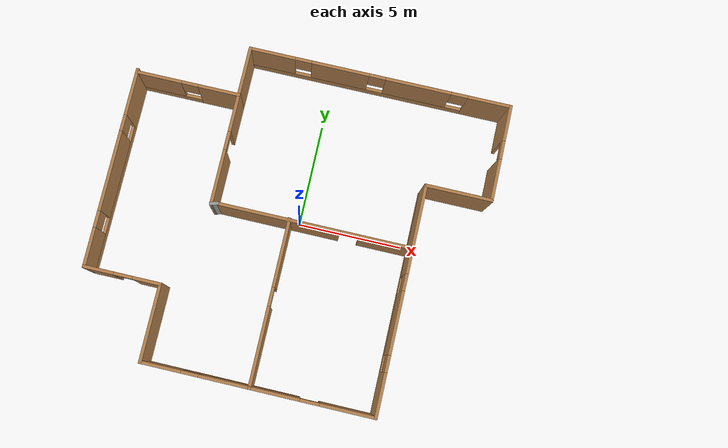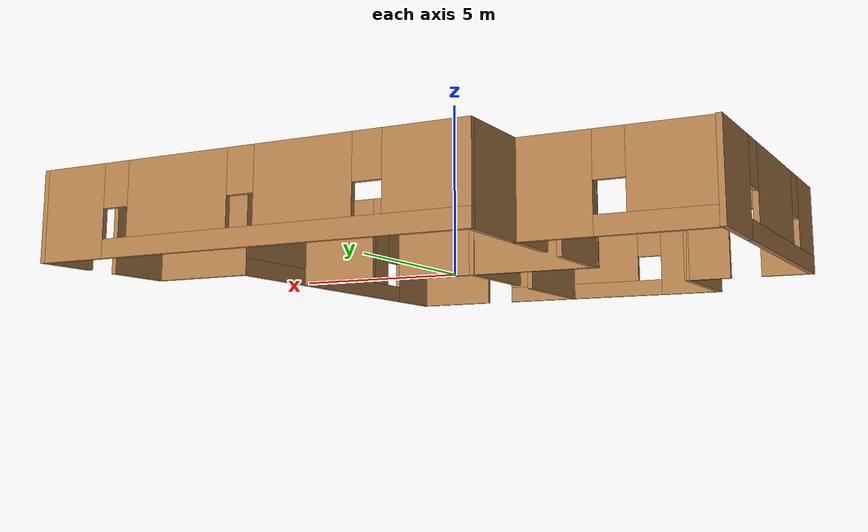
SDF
<?xml version='1.0'?>
<sdf version='1.7'>
  <model name='living_lab'>
    <pose>-0.294416 -0.385101 0 0 -0 0</pose>
    <link name='Wall_10'>
      <pose>2.475 7.725 0 0 -0 3.14159</pose>
      <visual name='Wall_10_Visual_0'>
        <pose>-5.30904 0 1.25 0 -0 0</pose>
        <geometry>
          <box>
            <size>2.13192 0.15 2.5</size>
          </box>
        </geometry>
        <material>
          <script>
            <uri>file://media/materials/scripts/gazebo.material</uri>
            <name>Gazebo/Wood</name>
          </script>
          <ambient>1 1 1 1</ambient>
        </material>
        <meta>
          <layer>0</layer>
        </meta>
      </visual>
      <collision name='Wall_10_Collision_0'>
        <geometry>
          <box>
            <size>2.13192 0.15 2.5</size>
          </box>
        </geometry>
        <pose>-5.30904 0 1.25 0 -0 0</pose>
      </collision>
      <visual name='Wall_10_Visual_1'>
        <pose>1.06596 0 0.25 0 -0 0</pose>
        <geometry>
          <box>
            <size>10.6181 0.15 0.5</size>
          </box>
        </geometry>
        <material>
          <script>
            <uri>file://media/materials/scripts/gazebo.material</uri>
            <name>Gazebo/Wood</name>
          </script>
          <ambient>1 1 1 1</ambient>
        </material>
        <meta>
          <layer>0</layer>
        </meta>
      </visual>
      <collision name='Wall_10_Collision_1'>
        <geometry>
          <box>
            <size>10.6181 0.15 0.5</size>
          </box>
        </geometry>
        <pose>1.06596 0 0.25 0 -0 0</pose>
      </collision>
      <visual name='Wall_10_Visual_2'>
        <pose>-1.86508 0 1.5 0 -0 0</pose>
        <geometry>
          <box>
            <size>3.156 0.15 2</size>
          </box>
        </geometry>
        <material>
          <script>
            <uri>file://media/materials/scripts/gazebo.material</uri>
            <name>Gazebo/Wood</name>
          </script>
          <ambient>1 1 1 1</ambient>
        </material>
        <meta>
          <layer>0</layer>
        </meta>
      </visual>
      <collision name='Wall_10_Collision_2'>
        <geometry>
          <box>
            <size>3.156 0.15 2</size>
          </box>
        </geometry>
        <pose>-1.86508 0 1.5 0 -0 0</pose>
      </collision>
      <visual name='Wall_10_Visual_3'>
        <pose>1.90692 0 1.5 0 -0 0</pose>
        <geometry>
          <box>
            <size>2.788 0.15 2</size>
          </box>
        </geometry>
        <material>
          <script>
            <uri>file://media/materials/scripts/gazebo.material</uri>
            <name>Gazebo/Wood</name>
          </script>
          <ambient>1 1 1 1</ambient>
        </material>
        <meta>
          <layer>0</layer>
        </meta>
      </visual>
      <collision name='Wall_10_Collision_3'>
        <geometry>
          <box>
            <size>2.788 0.15 2</size>
          </box>
        </geometry>
        <pose>1.90692 0 1.5 0 -0 0</pose>
      </collision>
      <visual name='Wall_10_Visual_4'>
        <pose>5.23796 0 1.5 0 -0 0</pose>
        <geometry>
          <box>
            <size>2.27408 0.15 2</size>
          </box>
        </geometry>
        <material>
          <script>
            <uri>file://media/materials/scripts/gazebo.material</uri>
            <name>Gazebo/Wood</name>
          </script>
          <ambient>1 1 1 1</ambient>
        </material>
        <meta>
          <layer>0</layer>
        </meta>
      </visual>
      <collision name='Wall_10_Collision_4'>
        <geometry>
          <box>
            <size>2.27408 0.15 2</size>
          </box>
        </geometry>
        <pose>5.23796 0 1.5 0 -0 0</pose>
      </collision>
      <visual name='Wall_10_Visual_5'>
        <pose>-3.84308 0 1.9 0 -0 0</pose>
        <geometry>
          <box>
            <size>0.8 0.15 1.2</size>
          </box>
        </geometry>
        <material>
          <script>
            <uri>file://media/materials/scripts/gazebo.material</uri>
            <name>Gazebo/Wood</name>
          </script>
          <ambient>1 1 1 1</ambient>
        </material>
        <meta>
          <layer>0</layer>
        </meta>
      </visual>
      <collision name='Wall_10_Collision_5'>
        <geometry>
          <box>
            <size>0.8 0.15 1.2</size>
          </box>
        </geometry>
        <pose>-3.84308 0 1.9 0 -0 0</pose>
      </collision>
      <visual name='Wall_10_Visual_6'>
        <pose>0.112923 0 1.9 0 -0 0</pose>
        <geometry>
          <box>
            <size>0.8 0.15 1.2</size>
          </box>
        </geometry>
        <material>
          <script>
            <uri>file://media/materials/scripts/gazebo.material</uri>
            <name>Gazebo/Wood</name>
          </script>
          <ambient>1 1 1 1</ambient>
        </material>
        <meta>
          <layer>0</layer>
        </meta>
      </visual>
      <collision name='Wall_10_Collision_6'>
        <geometry>
          <box>
            <size>0.8 0.15 1.2</size>
          </box>
        </geometry>
        <pose>0.112923 0 1.9 0 -0 0</pose>
      </collision>
      <visual name='Wall_10_Visual_7'>
        <pose>3.70092 0 1.9 0 -0 0</pose>
        <geometry>
          <box>
            <size>0.8 0.15 1.2</size>
          </box>
        </geometry>
        <material>
          <script>
            <uri>file://media/materials/scripts/gazebo.material</uri>
            <name>Gazebo/Wood</name>
          </script>
          <ambient>1 1 1 1</ambient>
        </material>
        <meta>
          <layer>0</layer>
        </meta>
      </visual>
      <collision name='Wall_10_Collision_7'>
        <geometry>
          <box>
            <size>0.8 0.15 1.2</size>
          </box>
        </geometry>
        <pose>3.70092 0 1.9 0 -0 0</pose>
      </collision>
    </link>
    <link name='Wall_11'>
      <collision name='Wall_11_Collision'>
        <geometry>
          <box>
            <size>2.5 0.15 2.5</size>
          </box>
        </geometry>
        <pose>0 0 1.25 0 -0 0</pose>
      </collision>
      <visual name='Wall_11_Visual'>
        <pose>0 0 1.25 0 -0 0</pose>
        <geometry>
          <box>
            <size>2.5 0.15 2.5</size>
          </box>
        </geometry>
        <material>
          <script>
            <uri>file://media/materials/scripts/gazebo.material</uri>
            <name>Gazebo/Wood</name>
          </script>
          <ambient>1 1 1 1</ambient>
        </material>
        <meta>
          <layer>0</layer>
        </meta>
      </visual>
      <pose>-3.825 6.55 0 0 -0 -1.5708</pose>
    </link>
    <link name='Wall_12'>
      <pose>-6.25 5.375 0 0 -0 3.14159</pose>
      <visual name='Wall_12_Visual_0'>
        <pose>-1.47804 0 1.25 0 -0 0</pose>
        <geometry>
          <box>
            <size>2.04392 0.15 2.5</size>
          </box>
        </geometry>
        <material>
          <script>
            <uri>file://media/materials/scripts/gazebo.material</uri>
            <name>Gazebo/Wood</name>
          </script>
          <ambient>1 1 1 1</ambient>
        </material>
        <meta>
          <layer>0</layer>
        </meta>
      </visual>
      <collision name='Wall_12_Collision_0'>
        <geometry>
          <box>
            <size>2.04392 0.15 2.5</size>
          </box>
        </geometry>
        <pose>-1.47804 0 1.25 0 -0 0</pose>
      </collision>
      <visual name='Wall_12_Visual_1'>
        <pose>1.02196 0 0.25 0 -0 0</pose>
        <geometry>
          <box>
            <size>2.95608 0.15 0.5</size>
          </box>
        </geometry>
        <material>
          <script>
            <uri>file://media/materials/scripts/gazebo.material</uri>
            <name>Gazebo/Wood</name>
          </script>
          <ambient>1 1 1 1</ambient>
        </material>
        <meta>
          <layer>0</layer>
        </meta>
      </visual>
      <collision name='Wall_12_Collision_1'>
        <geometry>
          <box>
            <size>2.95608 0.15 0.5</size>
          </box>
        </geometry>
        <pose>1.02196 0 0.25 0 -0 0</pose>
      </collision>
      <visual name='Wall_12_Visual_2'>
        <pose>1.42196 0 1.5 0 -0 0</pose>
        <geometry>
          <box>
            <size>2.15608 0.15 2</size>
          </box>
        </geometry>
        <material>
          <script>
            <uri>file://media/materials/scripts/gazebo.material</uri>
            <name>Gazebo/Wood</name>
          </script>
          <ambient>1 1 1 1</ambient>
        </material>
        <meta>
          <layer>0</layer>
        </meta>
      </visual>
      <collision name='Wall_12_Collision_2'>
        <geometry>
          <box>
            <size>2.15608 0.15 2</size>
          </box>
        </geometry>
        <pose>1.42196 0 1.5 0 -0 0</pose>
      </collision>
      <visual name='Wall_12_Visual_3'>
        <pose>-0.056077 0 1.9 0 -0 0</pose>
        <geometry>
          <box>
            <size>0.8 0.15 1.2</size>
          </box>
        </geometry>
        <material>
          <script>
            <uri>file://media/materials/scripts/gazebo.material</uri>
            <name>Gazebo/Wood</name>
          </script>
          <ambient>1 1 1 1</ambient>
        </material>
        <meta>
          <layer>0</layer>
        </meta>
      </visual>
      <collision name='Wall_12_Collision_3'>
        <geometry>
          <box>
            <size>0.8 0.15 1.2</size>
          </box>
        </geometry>
        <pose>-0.056077 0 1.9 0 -0 0</pose>
      </collision>
    </link>
    <link name='Wall_14'>
      <pose>0.99997 0.098285 0 0 -0 3.14159</pose>
      <visual name='Wall_14_Visual_0'>
        <pose>-3.40255 0 1.25 0 -0 0</pose>
        <geometry>
          <box>
            <size>2.44489 0.15 2.5</size>
          </box>
        </geometry>
        <material>
          <script>
            <uri>file://media/materials/scripts/gazebo.material</uri>
            <name>Gazebo/Wood</name>
          </script>
          <ambient>1 1 1 1</ambient>
        </material>
        <meta>
          <layer>0</layer>
        </meta>
      </visual>
      <collision name='Wall_14_Collision_0'>
        <geometry>
          <box>
            <size>2.44489 0.15 2.5</size>
          </box>
        </geometry>
        <pose>-3.40255 0 1.25 0 -0 0</pose>
      </collision>
      <visual name='Wall_14_Visual_1'>
        <pose>1.67245 0 1.25 0 -0 0</pose>
        <geometry>
          <box>
            <size>5.90511 0.15 2.5</size>
          </box>
        </geometry>
        <material>
          <script>
            <uri>file://media/materials/scripts/gazebo.material</uri>
            <name>Gazebo/Wood</name>
          </script>
          <ambient>1 1 1 1</ambient>
        </material>
        <meta>
          <layer>0</layer>
        </meta>
      </visual>
      <collision name='Wall_14_Collision_1'>
        <geometry>
          <box>
            <size>5.90511 0.15 2.5</size>
          </box>
        </geometry>
        <pose>1.67245 0 1.25 0 -0 0</pose>
      </collision>
      <visual name='Wall_14_Visual_2'>
        <pose>-1.73011 0 2.25 0 -0 0</pose>
        <geometry>
          <box>
            <size>0.9 0.15 0.5</size>
          </box>
        </geometry>
        <material>
          <script>
            <uri>file://media/materials/scripts/gazebo.material</uri>
            <name>Gazebo/Wood</name>
          </script>
          <ambient>1 1 1 1</ambient>
        </material>
        <meta>
          <layer>0</layer>
        </meta>
      </visual>
      <collision name='Wall_14_Collision_2'>
        <geometry>
          <box>
            <size>0.9 0.15 0.5</size>
          </box>
        </geometry>
        <pose>-1.73011 0 2.25 0 -0 0</pose>
      </collision>
    </link>
    <link name='Wall_16'>
      <pose>-0.125948 -3.79273 0 0 -0 1.5708</pose>
      <visual name='Wall_16_Visual_0'>
        <pose>-2.09044 0 1.25 0 -0 0</pose>
        <geometry>
          <box>
            <size>3.81911 0.15 2.5</size>
          </box>
        </geometry>
        <material>
          <script>
            <uri>file://media/materials/scripts/gazebo.material</uri>
            <name>Gazebo/Wood</name>
          </script>
          <ambient>1 1 1 1</ambient>
        </material>
        <meta>
          <layer>0</layer>
        </meta>
      </visual>
      <collision name='Wall_16_Collision_0'>
        <geometry>
          <box>
            <size>3.81911 0.15 2.5</size>
          </box>
        </geometry>
        <pose>-2.09044 0 1.25 0 -0 0</pose>
      </collision>
      <visual name='Wall_16_Visual_1'>
        <pose>2.35955 0 1.25 0 -0 0</pose>
        <geometry>
          <box>
            <size>3.28089 0.15 2.5</size>
          </box>
        </geometry>
        <material>
          <script>
            <uri>file://media/materials/scripts/gazebo.material</uri>
            <name>Gazebo/Wood</name>
          </script>
          <ambient>1 1 1 1</ambient>
        </material>
        <meta>
          <layer>0</layer>
        </meta>
      </visual>
      <collision name='Wall_16_Collision_1'>
        <geometry>
          <box>
            <size>3.28089 0.15 2.5</size>
          </box>
        </geometry>
        <pose>2.35955 0 1.25 0 -0 0</pose>
      </collision>
      <visual name='Wall_16_Visual_2'>
        <pose>0.269109 0 2.25 0 -0 0</pose>
        <geometry>
          <box>
            <size>0.9 0.15 0.5</size>
          </box>
        </geometry>
        <material>
          <script>
            <uri>file://media/materials/scripts/gazebo.material</uri>
            <name>Gazebo/Wood</name>
          </script>
          <ambient>1 1 1 1</ambient>
        </material>
        <meta>
          <layer>0</layer>
        </meta>
      </visual>
      <collision name='Wall_16_Collision_2'>
        <geometry>
          <box>
            <size>0.9 0.15 0.5</size>
          </box>
        </geometry>
        <pose>0.269109 0 2.25 0 -0 0</pose>
      </collision>
    </link>
    <link name='Wall_18'>
      <pose>-3.825 2.7 0 0 -0 -1.5708</pose>
      <visual name='Wall_18_Visual_0'>
        <pose>-1.80019 0 1.25 0 -0 0</pose>
        <geometry>
          <box>
            <size>1.89962 0.15 2.5</size>
          </box>
        </geometry>
        <material>
          <script>
            <uri>file://media/materials/scripts/gazebo.material</uri>
            <name>Gazebo/Wood</name>
          </script>
          <ambient>1 1 1 1</ambient>
        </material>
        <meta>
          <layer>0</layer>
        </meta>
      </visual>
      <collision name='Wall_18_Collision_0'>
        <geometry>
          <box>
            <size>1.89962 0.15 2.5</size>
          </box>
        </geometry>
        <pose>-1.80019 0 1.25 0 -0 0</pose>
      </collision>
      <visual name='Wall_18_Visual_1'>
        <pose>1.39981 0 1.25 0 -0 0</pose>
        <geometry>
          <box>
            <size>2.70038 0.15 2.5</size>
          </box>
        </geometry>
        <material>
          <script>
            <uri>file://media/materials/scripts/gazebo.material</uri>
            <name>Gazebo/Wood</name>
          </script>
          <ambient>1 1 1 1</ambient>
        </material>
        <meta>
          <layer>0</layer>
        </meta>
      </visual>
      <collision name='Wall_18_Collision_1'>
        <geometry>
          <box>
            <size>2.70038 0.15 2.5</size>
          </box>
        </geometry>
        <pose>1.39981 0 1.25 0 -0 0</pose>
      </collision>
      <visual name='Wall_18_Visual_2'>
        <pose>-0.400377 0 2.25 0 -0 0</pose>
        <geometry>
          <box>
            <size>0.9 0.15 0.5</size>
          </box>
        </geometry>
        <material>
          <script>
            <uri>file://media/materials/scripts/gazebo.material</uri>
            <name>Gazebo/Wood</name>
          </script>
          <ambient>1 1 1 1</ambient>
        </material>
        <meta>
          <layer>0</layer>
        </meta>
      </visual>
      <collision name='Wall_18_Collision_2'>
        <geometry>
          <box>
            <size>0.9 0.15 0.5</size>
          </box>
        </geometry>
        <pose>-0.400377 0 2.25 0 -0 0</pose>
      </collision>
    </link>
    <link name='Wall_21'>
      <collision name='Wall_21_Collision'>
        <geometry>
          <box>
            <size>0.434568 0.15 2.5</size>
          </box>
        </geometry>
        <pose>0 0 1.25 0 -0 0</pose>
      </collision>
      <visual name='Wall_21_Visual'>
        <pose>0 0 1.25 0 -0 0</pose>
        <geometry>
          <box>
            <size>0.434568 0.15 2.5</size>
          </box>
        </geometry>
        <material>
          <script>
            <uri>file://media/materials/scripts/gazebo.material</uri>
            <name>Gazebo/Grey</name>
          </script>
          <ambient>1 1 1 1</ambient>
        </material>
        <meta>
          <layer>0</layer>
        </meta>
      </visual>
      <pose>-3.68751 0.061642 0 0 -0 0.260466</pose>
    </link>
    <link name='Wall_3'>
      <pose>-8.775 0.675 0 0 -0 -1.5708</pose>
      <visual name='Wall_3_Visual_0'>
        <pose>-3.71219 0 1.25 0 -0 0</pose>
        <geometry>
          <box>
            <size>2.32562 0.15 2.5</size>
          </box>
        </geometry>
        <material>
          <script>
            <uri>file://media/materials/scripts/gazebo.material</uri>
            <name>Gazebo/Wood</name>
          </script>
          <ambient>1 1 1 1</ambient>
        </material>
        <meta>
          <layer>0</layer>
        </meta>
      </visual>
      <collision name='Wall_3_Collision_0'>
        <geometry>
          <box>
            <size>2.32562 0.15 2.5</size>
          </box>
        </geometry>
        <pose>-3.71219 0 1.25 0 -0 0</pose>
      </collision>
      <visual name='Wall_3_Visual_1'>
        <pose>1.16281 0 0.25 0 -0 0</pose>
        <geometry>
          <box>
            <size>7.42438 0.15 0.5</size>
          </box>
        </geometry>
        <material>
          <script>
            <uri>file://media/materials/scripts/gazebo.material</uri>
            <name>Gazebo/Wood</name>
          </script>
          <ambient>1 1 1 1</ambient>
        </material>
        <meta>
          <layer>0</layer>
        </meta>
      </visual>
      <collision name='Wall_3_Collision_1'>
        <geometry>
          <box>
            <size>7.42438 0.15 0.5</size>
          </box>
        </geometry>
        <pose>1.16281 0 0.25 0 -0 0</pose>
      </collision>
      <visual name='Wall_3_Visual_2'>
        <pose>0.196623 0 1.5 0 -0 0</pose>
        <geometry>
          <box>
            <size>3.892 0.15 2</size>
          </box>
        </geometry>
        <material>
          <script>
            <uri>file://media/materials/scripts/gazebo.material</uri>
            <name>Gazebo/Wood</name>
          </script>
          <ambient>1 1 1 1</ambient>
        </material>
        <meta>
          <layer>0</layer>
        </meta>
      </visual>
      <collision name='Wall_3_Collision_2'>
        <geometry>
          <box>
            <size>3.892 0.15 2</size>
          </box>
        </geometry>
        <pose>0.196623 0 1.5 0 -0 0</pose>
      </collision>
      <visual name='Wall_3_Visual_3'>
        <pose>3.90881 0 1.5 0 -0 0</pose>
        <geometry>
          <box>
            <size>1.93238 0.15 2</size>
          </box>
        </geometry>
        <material>
          <script>
            <uri>file://media/materials/scripts/gazebo.material</uri>
            <name>Gazebo/Wood</name>
          </script>
          <ambient>1 1 1 1</ambient>
        </material>
        <meta>
          <layer>0</layer>
        </meta>
      </visual>
      <collision name='Wall_3_Collision_3'>
        <geometry>
          <box>
            <size>1.93238 0.15 2</size>
          </box>
        </geometry>
        <pose>3.90881 0 1.5 0 -0 0</pose>
      </collision>
      <visual name='Wall_3_Visual_4'>
        <pose>-2.14938 0 1.9 0 -0 0</pose>
        <geometry>
          <box>
            <size>0.8 0.15 1.2</size>
          </box>
        </geometry>
        <material>
          <script>
            <uri>file://media/materials/scripts/gazebo.material</uri>
            <name>Gazebo/Wood</name>
          </script>
          <ambient>1 1 1 1</ambient>
        </material>
        <meta>
          <layer>0</layer>
        </meta>
      </visual>
      <collision name='Wall_3_Collision_4'>
        <geometry>
          <box>
            <size>0.8 0.15 1.2</size>
          </box>
        </geometry>
        <pose>-2.14938 0 1.9 0 -0 0</pose>
      </collision>
      <visual name='Wall_3_Visual_5'>
        <pose>2.54262 0 1.9 0 -0 0</pose>
        <geometry>
          <box>
            <size>0.8 0.15 1.2</size>
          </box>
        </geometry>
        <material>
          <script>
            <uri>file://media/materials/scripts/gazebo.material</uri>
            <name>Gazebo/Wood</name>
          </script>
          <ambient>1 1 1 1</ambient>
        </material>
        <meta>
          <layer>0</layer>
        </meta>
      </visual>
      <collision name='Wall_3_Collision_5'>
        <geometry>
          <box>
            <size>0.8 0.15 1.2</size>
          </box>
        </geometry>
        <pose>2.54262 0 1.9 0 -0 0</pose>
      </collision>
    </link>
    <link name='Wall_4'>
      <pose>-6.975 -4.125 0 0 -0 0</pose>
      <visual name='Wall_4_Visual_0'>
        <pose>-1.13996 0 1.25 0 -0 0</pose>
        <geometry>
          <box>
            <size>1.47008 0.15 2.5</size>
          </box>
        </geometry>
        <material>
          <script>
            <uri>file://media/materials/scripts/gazebo.material</uri>
            <name>Gazebo/Wood</name>
          </script>
          <ambient>1 1 1 1</ambient>
        </material>
        <meta>
          <layer>0</layer>
        </meta>
      </visual>
      <collision name='Wall_4_Collision_0'>
        <geometry>
          <box>
            <size>1.47008 0.15 2.5</size>
          </box>
        </geometry>
        <pose>-1.13996 0 1.25 0 -0 0</pose>
      </collision>
      <visual name='Wall_4_Visual_1'>
        <pose>1.18504 0 1.25 0 -0 0</pose>
        <geometry>
          <box>
            <size>1.37992 0.15 2.5</size>
          </box>
        </geometry>
        <material>
          <script>
            <uri>file://media/materials/scripts/gazebo.material</uri>
            <name>Gazebo/Wood</name>
          </script>
          <ambient>1 1 1 1</ambient>
        </material>
        <meta>
          <layer>0</layer>
        </meta>
      </visual>
      <collision name='Wall_4_Collision_1'>
        <geometry>
          <box>
            <size>1.37992 0.15 2.5</size>
          </box>
        </geometry>
        <pose>1.18504 0 1.25 0 -0 0</pose>
      </collision>
      <visual name='Wall_4_Visual_2'>
        <pose>0.045076 0 2.25 0 -0 0</pose>
        <geometry>
          <box>
            <size>0.9 0.15 0.5</size>
          </box>
        </geometry>
        <material>
          <script>
            <uri>file://media/materials/scripts/gazebo.material</uri>
            <name>Gazebo/Wood</name>
          </script>
          <ambient>1 1 1 1</ambient>
        </material>
        <meta>
          <layer>0</layer>
        </meta>
      </visual>
      <collision name='Wall_4_Collision_2'>
        <geometry>
          <box>
            <size>0.9 0.15 0.5</size>
          </box>
        </geometry>
        <pose>0.045076 0 2.25 0 -0 0</pose>
      </collision>
    </link>
    <link name='Wall_5'>
      <collision name='Wall_5_Collision'>
        <geometry>
          <box>
            <size>3.75 0.15 2.5</size>
          </box>
        </geometry>
        <pose>0 0 1.25 0 -0 0</pose>
      </collision>
      <visual name='Wall_5_Visual'>
        <pose>0 0 1.25 0 -0 0</pose>
        <geometry>
          <box>
            <size>3.75 0.15 2.5</size>
          </box>
        </geometry>
        <material>
          <script>
            <uri>file://media/materials/scripts/gazebo.material</uri>
            <name>Gazebo/Wood</name>
          </script>
          <ambient>1 1 1 1</ambient>
        </material>
        <meta>
          <layer>0</layer>
        </meta>
      </visual>
      <pose>-5.175 -5.925 0 0 -0 -1.5708</pose>
    </link>
    <link name='Wall_6'>
      <pose>0.25 -7.725 0 0 -0 0</pose>
      <visual name='Wall_6_Visual_0'>
        <pose>-4.51596 0 1.25 0 -0 0</pose>
        <geometry>
          <box>
            <size>1.96808 0.15 2.5</size>
          </box>
        </geometry>
        <material>
          <script>
            <uri>file://media/materials/scripts/gazebo.material</uri>
            <name>Gazebo/Wood</name>
          </script>
          <ambient>1 1 1 1</ambient>
        </material>
        <meta>
          <layer>0</layer>
        </meta>
      </visual>
      <collision name='Wall_6_Collision_0'>
        <geometry>
          <box>
            <size>1.96808 0.15 2.5</size>
          </box>
        </geometry>
        <pose>-4.51596 0 1.25 0 -0 0</pose>
      </collision>
      <visual name='Wall_6_Visual_1'>
        <pose>4.16904 0 1.25 0 -0 0</pose>
        <geometry>
          <box>
            <size>2.66192 0.15 2.5</size>
          </box>
        </geometry>
        <material>
          <script>
            <uri>file://media/materials/scripts/gazebo.material</uri>
            <name>Gazebo/Wood</name>
          </script>
          <ambient>1 1 1 1</ambient>
        </material>
        <meta>
          <layer>0</layer>
        </meta>
      </visual>
      <collision name='Wall_6_Collision_1'>
        <geometry>
          <box>
            <size>2.66192 0.15 2.5</size>
          </box>
        </geometry>
        <pose>4.16904 0 1.25 0 -0 0</pose>
      </collision>
      <visual name='Wall_6_Visual_2'>
        <pose>-0.796923 0 0.25 0 -0 0</pose>
        <geometry>
          <box>
            <size>5.47 0.15 0.5</size>
          </box>
        </geometry>
        <material>
          <script>
            <uri>file://media/materials/scripts/gazebo.material</uri>
            <name>Gazebo/Wood</name>
          </script>
          <ambient>1 1 1 1</ambient>
        </material>
        <meta>
          <layer>0</layer>
        </meta>
      </visual>
      <collision name='Wall_6_Collision_2'>
        <geometry>
          <box>
            <size>5.47 0.15 0.5</size>
          </box>
        </geometry>
        <pose>-0.796923 0 0.25 0 -0 0</pose>
      </collision>
      <visual name='Wall_6_Visual_3'>
        <pose>-0.396923 0 1.5 0 -0 0</pose>
        <geometry>
          <box>
            <size>4.67 0.15 2</size>
          </box>
        </geometry>
        <material>
          <script>
            <uri>file://media/materials/scripts/gazebo.material</uri>
            <name>Gazebo/Wood</name>
          </script>
          <ambient>1 1 1 1</ambient>
        </material>
        <meta>
          <layer>0</layer>
        </meta>
      </visual>
      <collision name='Wall_6_Collision_3'>
        <geometry>
          <box>
            <size>4.67 0.15 2</size>
          </box>
        </geometry>
        <pose>-0.396923 0 1.5 0 -0 0</pose>
      </collision>
      <visual name='Wall_6_Visual_4'>
        <pose>-3.13192 0 1.9 0 -0 0</pose>
        <geometry>
          <box>
            <size>0.8 0.15 1.2</size>
          </box>
        </geometry>
        <material>
          <script>
            <uri>file://media/materials/scripts/gazebo.material</uri>
            <name>Gazebo/Wood</name>
          </script>
          <ambient>1 1 1 1</ambient>
        </material>
        <meta>
          <layer>0</layer>
        </meta>
      </visual>
      <collision name='Wall_6_Collision_4'>
        <geometry>
          <box>
            <size>0.8 0.15 1.2</size>
          </box>
        </geometry>
        <pose>-3.13192 0 1.9 0 -0 0</pose>
      </collision>
      <visual name='Wall_6_Visual_5'>
        <pose>2.38808 0 2.25 0 -0 0</pose>
        <geometry>
          <box>
            <size>0.9 0.15 0.5</size>
          </box>
        </geometry>
        <material>
          <script>
            <uri>file://media/materials/scripts/gazebo.material</uri>
            <name>Gazebo/Wood</name>
          </script>
          <ambient>1 1 1 1</ambient>
        </material>
        <meta>
          <layer>0</layer>
        </meta>
      </visual>
      <collision name='Wall_6_Collision_5'>
        <geometry>
          <box>
            <size>0.9 0.15 0.5</size>
          </box>
        </geometry>
        <pose>2.38808 0 2.25 0 -0 0</pose>
      </collision>
    </link>
    <link name='Wall_7'>
      <pose>5.675 -2.3 0 0 -0 1.5708</pose>
      <visual name='Wall_7_Visual_0'>
        <pose>-4.43581 0 1.25 0 -0 0</pose>
        <geometry>
          <box>
            <size>2.12838 0.15 2.5</size>
          </box>
        </geometry>
        <material>
          <script>
            <uri>file://media/materials/scripts/gazebo.material</uri>
            <name>Gazebo/Wood</name>
          </script>
          <ambient>1 1 1 1</ambient>
        </material>
        <meta>
          <layer>0</layer>
        </meta>
      </visual>
      <collision name='Wall_7_Collision_0'>
        <geometry>
          <box>
            <size>2.12838 0.15 2.5</size>
          </box>
        </geometry>
        <pose>-4.43581 0 1.25 0 -0 0</pose>
      </collision>
      <visual name='Wall_7_Visual_1'>
        <pose>1.06419 0 0.25 0 -0 0</pose>
        <geometry>
          <box>
            <size>8.87162 0.15 0.5</size>
          </box>
        </geometry>
        <material>
          <script>
            <uri>file://media/materials/scripts/gazebo.material</uri>
            <name>Gazebo/Wood</name>
          </script>
          <ambient>1 1 1 1</ambient>
        </material>
        <meta>
          <layer>0</layer>
        </meta>
      </visual>
      <collision name='Wall_7_Collision_1'>
        <geometry>
          <box>
            <size>8.87162 0.15 0.5</size>
          </box>
        </geometry>
        <pose>1.06419 0 0.25 0 -0 0</pose>
      </collision>
      <visual name='Wall_7_Visual_2'>
        <pose>-1.08562 0 1.5 0 -0 0</pose>
        <geometry>
          <box>
            <size>2.972 0.15 2</size>
          </box>
        </geometry>
        <material>
          <script>
            <uri>file://media/materials/scripts/gazebo.material</uri>
            <name>Gazebo/Wood</name>
          </script>
          <ambient>1 1 1 1</ambient>
        </material>
        <meta>
          <layer>0</layer>
        </meta>
      </visual>
      <collision name='Wall_7_Collision_2'>
        <geometry>
          <box>
            <size>2.972 0.15 2</size>
          </box>
        </geometry>
        <pose>-1.08562 0 1.5 0 -0 0</pose>
      </collision>
      <visual name='Wall_7_Visual_3'>
        <pose>3.35019 0 1.5 0 -0 0</pose>
        <geometry>
          <box>
            <size>4.29962 0.15 2</size>
          </box>
        </geometry>
        <material>
          <script>
            <uri>file://media/materials/scripts/gazebo.material</uri>
            <name>Gazebo/Wood</name>
          </script>
          <ambient>1 1 1 1</ambient>
        </material>
        <meta>
          <layer>0</layer>
        </meta>
      </visual>
      <collision name='Wall_7_Collision_3'>
        <geometry>
          <box>
            <size>4.29962 0.15 2</size>
          </box>
        </geometry>
        <pose>3.35019 0 1.5 0 -0 0</pose>
      </collision>
      <visual name='Wall_7_Visual_4'>
        <pose>-2.97162 0 1.9 0 -0 0</pose>
        <geometry>
          <box>
            <size>0.8 0.15 1.2</size>
          </box>
        </geometry>
        <material>
          <script>
            <uri>file://media/materials/scripts/gazebo.material</uri>
            <name>Gazebo/Wood</name>
          </script>
          <ambient>1 1 1 1</ambient>
        </material>
        <meta>
          <layer>0</layer>
        </meta>
      </visual>
      <collision name='Wall_7_Collision_4'>
        <geometry>
          <box>
            <size>0.8 0.15 1.2</size>
          </box>
        </geometry>
        <pose>-2.97162 0 1.9 0 -0 0</pose>
      </collision>
      <visual name='Wall_7_Visual_5'>
        <pose>0.800377 0 1.9 0 -0 0</pose>
        <geometry>
          <box>
            <size>0.8 0.15 1.2</size>
          </box>
        </geometry>
        <material>
          <script>
            <uri>file://media/materials/scripts/gazebo.material</uri>
            <name>Gazebo/Wood</name>
          </script>
          <ambient>1 1 1 1</ambient>
        </material>
        <meta>
          <layer>0</layer>
        </meta>
      </visual>
      <collision name='Wall_7_Collision_5'>
        <geometry>
          <box>
            <size>0.8 0.15 1.2</size>
          </box>
        </geometry>
        <pose>0.800377 0 1.9 0 -0 0</pose>
      </collision>
    </link>
    <link name='Wall_8'>
      <collision name='Wall_8_Collision'>
        <geometry>
          <box>
            <size>3.25 0.15 2.5</size>
          </box>
        </geometry>
        <pose>0 0 1.25 0 -0 0</pose>
      </collision>
      <visual name='Wall_8_Visual'>
        <pose>0 0 1.25 0 -0 0</pose>
        <geometry>
          <box>
            <size>3.25 0.15 2.5</size>
          </box>
        </geometry>
        <material>
          <script>
            <uri>file://media/materials/scripts/gazebo.material</uri>
            <name>Gazebo/Wood</name>
          </script>
          <ambient>1 1 1 1</ambient>
        </material>
        <meta>
          <layer>0</layer>
        </meta>
      </visual>
      <pose>7.225 3.125 0 0 -0 0</pose>
    </link>
    <link name='Wall_9'>
      <pose>8.775 5.425 0 0 -0 1.5708</pose>
      <visual name='Wall_9_Visual_0'>
        <pose>-1.33281 0 1.25 0 -0 0</pose>
        <geometry>
          <box>
            <size>2.08438 0.15 2.5</size>
          </box>
        </geometry>
        <material>
          <script>
            <uri>file://media/materials/scripts/gazebo.material</uri>
            <name>Gazebo/Wood</name>
          </script>
          <ambient>1 1 1 1</ambient>
        </material>
        <meta>
          <layer>0</layer>
        </meta>
      </visual>
      <collision name='Wall_9_Collision_0'>
        <geometry>
          <box>
            <size>2.08438 0.15 2.5</size>
          </box>
        </geometry>
        <pose>-1.33281 0 1.25 0 -0 0</pose>
      </collision>
      <visual name='Wall_9_Visual_1'>
        <pose>1.49219 0 1.25 0 -0 0</pose>
        <geometry>
          <box>
            <size>1.76562 0.15 2.5</size>
          </box>
        </geometry>
        <material>
          <script>
            <uri>file://media/materials/scripts/gazebo.material</uri>
            <name>Gazebo/Wood</name>
          </script>
          <ambient>1 1 1 1</ambient>
        </material>
        <meta>
          <layer>0</layer>
        </meta>
      </visual>
      <collision name='Wall_9_Collision_1'>
        <geometry>
          <box>
            <size>1.76562 0.15 2.5</size>
          </box>
        </geometry>
        <pose>1.49219 0 1.25 0 -0 0</pose>
      </collision>
      <visual name='Wall_9_Visual_2'>
        <pose>0.159377 0 2.25 0 -0 0</pose>
        <geometry>
          <box>
            <size>0.9 0.15 0.5</size>
          </box>
        </geometry>
        <material>
          <script>
            <uri>file://media/materials/scripts/gazebo.material</uri>
            <name>Gazebo/Wood</name>
          </script>
          <ambient>1 1 1 1</ambient>
        </material>
        <meta>
          <layer>0</layer>
        </meta>
      </visual>
      <collision name='Wall_9_Collision_2'>
        <geometry>
          <box>
            <size>0.9 0.15 0.5</size>
          </box>
        </geometry>
        <pose>0.159377 0 2.25 0 -0 0</pose>
      </collision>
    </link>
    <static>1</static>
  </model>
</sdf>
